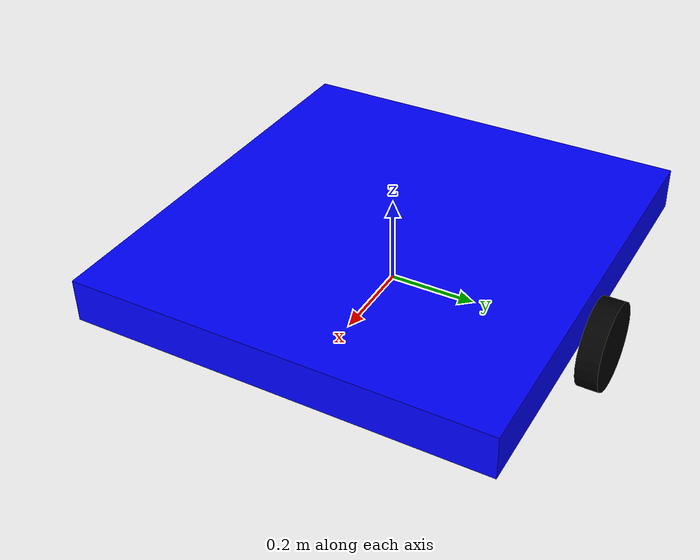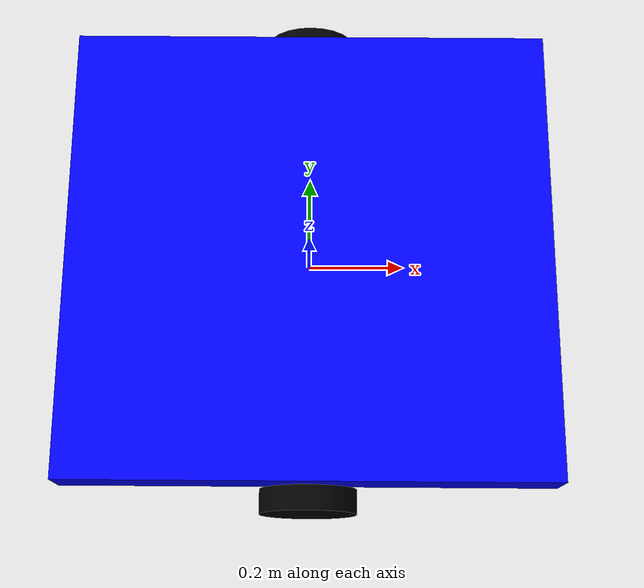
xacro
<?xml version="1.0"?>
<robot name="simple_robot" xmlns:xacro="http://www.ros.org/wiki/xacro">
  <!-- XACRO -->
  <xacro:property name="wheel_radius" value="0.1" />
  <xacro:property name="wheel_length" value="0.05" />
  <xacro:property name="base_size" value="1.0 0.95 0.1" />
  <xacro:property name="base_origin" value="0 0 0.1" />

  <!-- links and joint -->
  <!-- Base link (rectangle) -->
  <link name="base_link">
    <visual>
      <geometry>
        <box size="${base_size}"/>
      </geometry>
      <origin xyz="${base_origin}" rpy="0 0 0"/>
      <material name="blue">
        <color rgba="0 0 1 1"/>
      </material>
    </visual>
    <collision>
      <geometry>
        <box size="${base_size}"/>
      </geometry>
    </collision>
    <inertial>
      <mass value="5.0"/>
      <inertia ixx="0.1" ixy="0.0" ixz="0.0"
               iyy="0.1" iyz="0.0"
               izz="0.1"/>
    </inertial>
  </link>

  <!-- Left wheel -->
  <link name="left_wheel">
    <visual>
      <geometry>
        <cylinder radius="${wheel_radius}" length="${wheel_length}" />
      </geometry>
      <origin xyz="0.0 0.25 0.0" rpy="1.5708 0 0"/>
      <material name="black">
        <color rgba="0 0 0 1"/>
      </material>
    </visual>
    <collision>
      <geometry>
        <cylinder radius="${wheel_radius}" length="${wheel_length}" />
      </geometry>
      <origin xyz="0.0 0.25 0.0" rpy="1.5708 0 0"/>
    </collision>
    <inertial>
      <mass value="0.5"/>
      <inertia ixx="0.001" ixy="0.0" ixz="0.0"
               iyy="0.001" iyz="0.0"
               izz="0.001"/>
    </inertial>
    <dynamics damping="0.7" friction="0.2"/>
  </link>

   <!-- Right wheel -->
  <link name="right_wheel">
    <visual>
      <geometry>
        <cylinder radius="${wheel_radius}" length="${wheel_length}" />
      </geometry>
      <origin xyz="0.0 -0.25 0.0" rpy="1.5708 0 0"/>
      <material name="black"/>
    </visual>
    <collision>
      <geometry>
        <cylinder radius="${wheel_radius}" length="${wheel_length}" />
      </geometry>
      <origin xyz="0.0 -0.25 0.0" rpy="1.5708 0 0"/>
    </collision>
    <inertial>
      <mass value="0.5"/>
      <inertia ixx="0.001" ixy="0.0" ixz="0.0"
               iyy="0.001" iyz="0.0"
               izz="0.001"/>
    </inertial>
    <dynamics damping="0.7" friction="0.2"/>
  </link>

  <!-- Left wheel joint -->
  <joint name="left_wheel_joint" type="continuous">
    <parent link="base_link"/>
    <child link="left_wheel"/>
    <origin xyz="0.0 0.25 0.0" rpy="0 0 0"/>
    <axis xyz="0 1 0"/>
  </joint>

  <!-- Right wheel joint -->
  <joint name="right_wheel_joint" type="continuous">
    <parent link="base_link"/>
    <child link="right_wheel"/>
    <origin xyz="0.0 -0.25 0.0" rpy="0 0 0"/>
    <axis xyz="0 1 0"/>
  </joint>

  <!-- Transmission block -->
  <transmission name="left_wheel_trans">
    <type>transmission_interface/SimpleTransmission</type>
    <joint name="left_wheel_joint">
      <hardwareInterface>hardware_interface/VelocityJointInterface</hardwareInterface>
    </joint>
    <actuator name="left_motor">
      <hardwareInterface>hardware_interface/VelocityJointInterface</hardwareInterface>
      <mechanicalReduction>1</mechanicalReduction>
    </actuator>
  </transmission>

  <transmission name="right_wheel_trans">
    <type>transmission_interface/SimpleTransmission</type>
    <joint name="right_wheel_joint">
      <hardwareInterface>hardware_interface/VelocityJointInterface</hardwareInterface>
    </joint>
    <actuator name="right_motor">
      <hardwareInterface>hardware_interface/VelocityJointInterface</hardwareInterface>
      <mechanicalReduction>1</mechanicalReduction>
    </actuator>
  </transmission>

  <!-- ROS2 controls -->
  <ros2_control name="MyRobotHardware" type="system">
  <hardware>
    <plugin>gazebo_ros2_control/GazeboSystem</plugin>
  </hardware>
  <joint name="left_wheel_joint">
    <command_interface name="velocity"/>
    <state_interface name="velocity"/>
  </joint>
  <joint name="right_wheel_joint">
    <command_interface name="velocity"/>
    <state_interface name="velocity"/>
  </joint>
</ros2_control>

<!-- Gazebo block -->
<gazebo>
  <plugin name="gazebo_ros2_control" filename="libgazebo_ros2_control.so"/>
</gazebo>

</robot>
